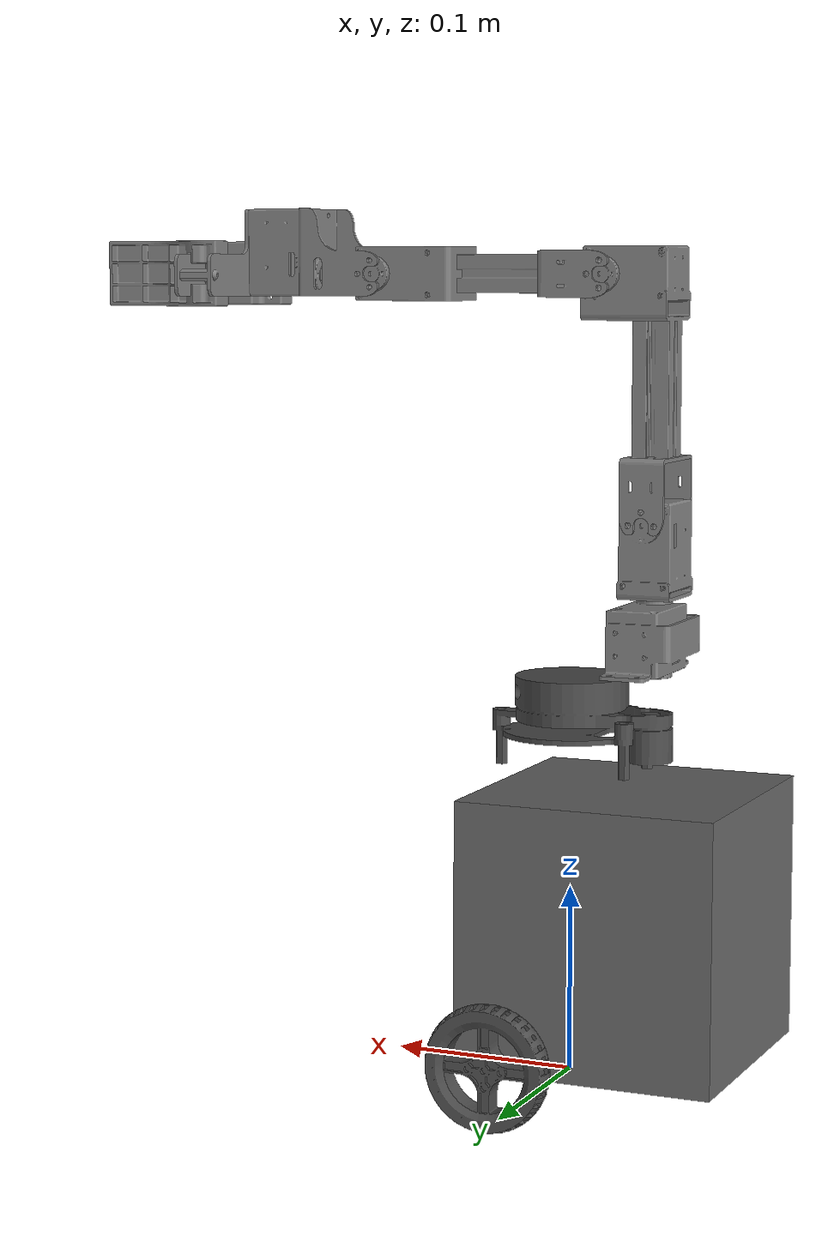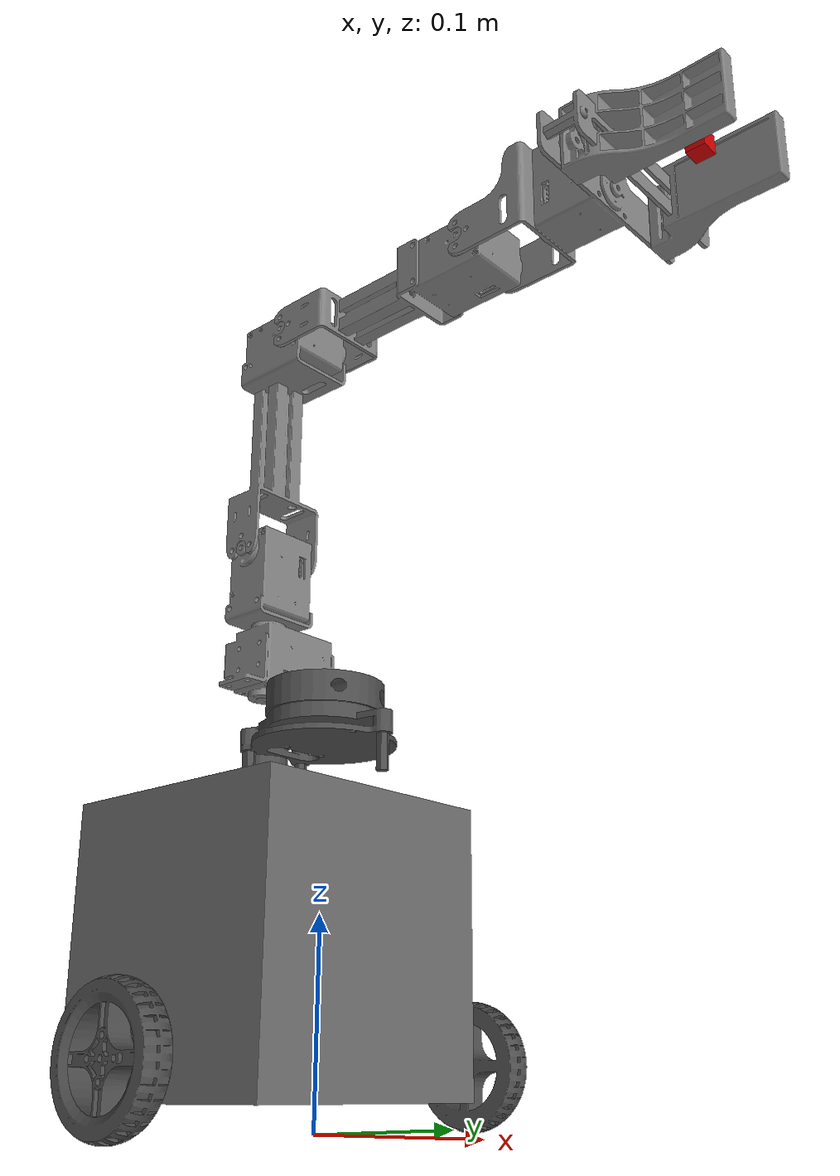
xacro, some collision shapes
<?xml version="1.0"?>
<robot name="transbot_miniarm" xmlns:xacro="http://ros.org/wiki/xacro">

  <!-- Include Transbot URDF -->
  <xacro:include filename="$(find transbot_description)/urdf/transbot_normal.urdf.xacro"/>

  <!-- Include MINIARM URDF -->
  <xacro:include filename="$(find transbot_description)/urdf/miniarm.urdf.xacro"/>

  <!-- Base fixed joint -->
  <joint name="base_fixed" type="fixed">
    <origin xyz="-0.04575 0.0 0.206" rpy="0 0 0"/>
    <parent link="base_link"/>
    <child link="link1"/>
  </joint>

</robot>

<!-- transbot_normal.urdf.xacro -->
<robot name="transbot_normal" xmlns:xacro="http://ros.org/wiki/xacro">
  <xacro:include filename="$(find transbot_description)/urdf/common_properties.xacro"/>
  <xacro:include filename="$(find transbot_description)/urdf/transbot_normal.gazebo.xacro"/>

  <link name="base_footprint"/>

  <joint name="base_joint" type="fixed">
    <parent link="base_footprint"/>
    <child link="base_link"/>
    <origin xyz="0.0 0.0 0.015" rpy="0 0 0"/>
  </joint>

  <link name="base_link">
    <visual>
      <origin xyz="-0.04575 0 0.0" rpy="0 0 0"/>
      <geometry>
        <mesh filename="package://transbot_description/meshes/bases/normal_base.stl" scale="0.001 0.001 0.001"/>
      </geometry>
      <material name="light_black"/>
    </visual>

    <collision>
      <origin xyz="-0.032 0 0.070" rpy="0 0 0"/>
      <geometry>
        <box size="0.140 0.140 0.143"/>
      </geometry>
    </collision>

    <inertial>
      <origin xyz="0 0 0" rpy="0 0 0"/>
      <mass value="8.2573504e-01"/>
      <inertia ixx="2.2124416e-03" ixy="-1.2294101e-05" ixz="3.4938785e-05"
               iyy="2.1193702e-03" iyz="-5.0120904e-06"
               izz="2.0064271e-03" />
    </inertial>
  </link>

  <joint name="wheel_left_rear_joint" type="continuous">
    <parent link="base_link"/>
    <child link="wheel_left_link"/>
    <origin xyz="0.0 0.1155 0.01625" rpy="-1.57 0 0"/>
    <axis xyz="0 0 1"/>
  </joint>

  <link name="wheel_left_link">
    <visual>
      <origin xyz="0 0 0" rpy="1.57 0 0"/>
      <geometry>
        <mesh filename="package://transbot_description/meshes/wheels/left_normal.stl" scale="0.001 0.001 0.001"/>
      </geometry>
      <material name="dark"/>
    </visual>

    <collision>
      <origin xyz="0 0 0" rpy="0 0 0"/>
      <geometry>
        <cylinder length="0.018" radius="0.033"/>
      </geometry>
    </collision>

    <inertial>
      <origin xyz="0 0 0" />
      <mass value="2.8498940e-02" />
      <inertia ixx="1.1175580e-05" ixy="-4.2369783e-11" ixz="-5.9381719e-09"
               iyy="1.1192413e-05" iyz="-1.4400107e-11"
               izz="2.0712558e-05" />
      </inertial>
  </link>

  <joint name="wheel_right_rear_joint" type="continuous">
    <parent link="base_link"/>
    <child link="wheel_right_link"/>
    <origin xyz="0.0 -0.1155 0.01625" rpy="-1.57 0 0"/>
    <axis xyz="0 0 1"/>
  </joint>

  <link name="wheel_right_link">
    <visual>
      <origin xyz="0 0 0" rpy="1.57 0 0"/>
      <geometry>
        <mesh filename="package://transbot_description/meshes/wheels/right_normal.stl" scale="0.001 0.001 0.001"/>
      </geometry>
      <material name="dark"/>
    </visual>

    <collision>
      <origin xyz="0 0 0" rpy="0 0 0"/>
      <geometry>
        <cylinder length="0.018" radius="0.033"/>
      </geometry>
    </collision>

    <inertial>
      <origin xyz="0 0 0" />
      <mass value="2.8498940e-02" />
      <inertia ixx="1.1175580e-05" ixy="-4.2369783e-11" ixz="-5.9381719e-09"
               iyy="1.1192413e-05" iyz="-1.4400107e-11"
               izz="2.0712558e-05" />
      </inertial>
  </link>

<joint name="wheel_left_front_joint" type="continuous">
    <parent link="base_link"/>
    <child link="wheel_left_front_link"/>
    <origin xyz="-0.0915 0.1155 0.01625" rpy="-1.57 0 0"/>
    <axis xyz="0 0 1"/>
  </joint>

  <link name="wheel_left_front_link">
  </link>

  <joint name="wheel_right_front_joint" type="continuous">
    <parent link="base_link"/>
    <child link="wheel_right_front_link"/>
    <origin xyz="-0.0915 -0.1155 0.01625" rpy="-1.57 0 0"/>
    <axis xyz="0 0 1"/>
  </joint>

  <link name="wheel_right_front_link">
  </link>

  <joint name="caster_back_joint" type="fixed">
    <parent link="base_link"/>
    <child link="caster_back_link"/>
    <origin xyz="-0.11775 0 -0.004" rpy="-1.57 0 0"/>
  </joint>

  <link name="caster_back_link">
    <collision>
      <origin xyz="0 0.001 0" rpy="0 0 0"/>
      <geometry>
        <box size="0.030 0.009 0.020"/>
      </geometry>
    </collision>

    <inertial>
      <origin xyz="0 0 0" />
      <mass value="0.05" />
      <inertia ixx="0.001" ixy="0.0" ixz="0.0"
               iyy="0.001" iyz="0.0"
               izz="0.001" />
    </inertial>
  </link>

  <joint name="imu_joint" type="fixed">
    <parent link="base_link"/>
    <child link="imu_link"/>
    <origin xyz="-0.07275 0 0.078" rpy="0 0 0"/>
  </joint>

  <link name="imu_link"/>

  <joint name="scan_joint" type="fixed">
    <parent link="base_link"/>
    <child link="base_scan"/>
    <origin xyz="0.0 0 0.192" rpy="0 0 0"/>
  </joint>

  <link name="base_scan">
    <visual>
      <origin xyz="0 0 0.0" rpy="0 0 0"/>
      <geometry>
        <mesh filename="package://transbot_description/meshes/sensors/yd-x2l.stl" scale="0.001 0.001 0.001"/>
      </geometry>
      <material name="dark"/>
    </visual>

    <collision>
      <origin xyz="0.015 0 -0.0065" rpy="0 0 0"/>
      <geometry>
        <cylinder length="0.0315" radius="0.055"/>
      </geometry>
    </collision>

    <inertial>
      <mass value="0.114" />
      <origin xyz="0 0 0" />
      <inertia ixx="0.001" ixy="0.0" ixz="0.0"
               iyy="0.001" iyz="0.0"
               izz="0.001" />
    </inertial>
  </link>

 <joint name="camera_joint" type="fixed">
    <origin xyz="0.0332 0.0 0.0934" rpy="0 0 0"/>
    <parent link="base_link"/>
    <child link="camera_link"/>
  </joint>

  <link name="camera_link">
    <collision>
      <origin xyz="0.0 0.0 0.0" rpy="0 0 0"/>
      <geometry>
        <box size="0.015 0.030 0.027"/>
      </geometry>
    </collision>
  </link>

  <joint name="camera_rgb_joint" type="fixed">
    <origin xyz="0.0 0.0 0.0" rpy="0 0 0"/>
    <parent link="camera_link"/>
    <child link="camera_rgb_frame"/>
  </joint>
  <link name="camera_rgb_frame"/>

  <joint name="camera_rgb_optical_joint" type="fixed">
    <origin xyz="0 0 0" rpy="-1.57 0 -1.57"/>
    <parent link="camera_rgb_frame"/>
    <child link="camera_rgb_optical_frame"/>
  </joint>
  <link name="camera_rgb_optical_frame"/>

</robot>

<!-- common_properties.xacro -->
<robot name="xacro_properties" xmlns:xacro="http://ros.org/wiki/xacro">

  <!-- Init colour -->
  <material name="black">
      <color rgba="0.0 0.0 0.0 1.0"/>
  </material>

  <material name="dark">
    <color rgba="0.3 0.3 0.3 1.0"/>
  </material>
  <material name="light_black">
    <color rgba="0.4 0.4 0.4 1.0"/>
  </material>

  <material name="blue">
    <color rgba="0.0 0.0 0.8 1.0"/>
  </material>

  <material name="green">
    <color rgba="0.0 0.8 0.0 1.0"/>
  </material>

  <material name="grey">
    <color rgba="0.5 0.5 0.5 1.0"/>
  </material>

  <material name="orange">
    <color rgba="${255/255} ${108/255} ${10/255} 1.0"/>
  </material>

  <material name="brown">
    <color rgba="${222/255} ${207/255} ${195/255} 1.0"/>
  </material>

  <material name="red">
    <color rgba="0.8 0.0 0.0 1.0"/>
  </material>

  <material name="white">
    <color rgba="1.0 1.0 1.0 1.0"/>
  </material>
</robot>

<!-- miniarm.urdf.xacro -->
<robot xmlns:xacro="http://ros.org/wiki/xacro">

  <!-- Include MiniArm Gazebo Parameter -->
  <xacro:include filename="$(find transbot_description)/urdf/miniarm.gazebo.xacro"/>

  <!-- Include MiniArm Transmission -->
  <xacro:include filename="$(find transbot_description)/urdf/miniarm.transmission.xacro"/>

  <!-- Link 1 -->
  <link name="link1">
    <visual>
      <origin xyz="0 0 0" rpy="0 0 0"/>
      <geometry>
        <mesh filename="package://transbot_description/meshes/arm/chain_link1.stl" scale="0.001 0.001 0.001"/>
      </geometry>
      <material name="grey"/>
    </visual>

    <collision>
      <origin xyz="0 0 0" rpy="0 0 0"/>
      <geometry>
        <mesh filename="package://transbot_description/meshes/arm/chain_link1.stl" scale="0.001 0.001 0.001"/>
      </geometry>
    </collision>

     <inertial>
      <origin xyz="3.0876154e-04 0.0000000e+00 -1.2176461e-04" />
      <mass value="7.9119962e-02" />
      <inertia ixx="1.2505234e-05" ixy="0.0" ixz="-1.7855208e-07"
               iyy="2.1898364e-05" iyz="0.0"
               izz="1.9267361e-05" />
    </inertial>
  </link>

  <!-- Joint 1 -->
  <joint name="joint1" type="revolute">
    <parent link="link1"/>
    <child link="link2"/>
    <origin xyz="0.0 0.0 0.017" rpy="0 0 0"/>
    <axis xyz="0 0 1"/>
    <limit velocity="4.8" effort="1" lower="${-pi*0.9}" upper="${pi*0.9}" />
  </joint>

  <!--  Link 2 -->
  <link name="link2">
    <visual>
      <origin xyz="0 0 0.0207" rpy="0 0 0"/>
      <geometry>
        <mesh filename="package://transbot_description/meshes/arm/chain_link2.stl" scale="0.001 0.001 0.001"/>
      </geometry>
      <material name="grey"/>
    </visual>

    <collision>
      <origin xyz="0 0 0.0207" rpy="0 0 0"/>
      <geometry>
        <mesh filename="package://transbot_description/meshes/arm/chain_link2.stl" scale="0.001 0.001 0.001"/>
      </geometry>
    </collision>

     <inertial>
      <origin xyz="-3.0184870e-04 5.4043684e-04 ${0.018 + 2.9433464e-02}" />
      <mass value="9.8406837e-02" />
      <inertia ixx="3.4543422e-05" ixy="-1.6031095e-08" ixz="-3.8375155e-07"
               iyy="3.2689329e-05" iyz="2.8511935e-08"
               izz="1.8850320e-05" />
    </inertial>
  </link>

  <!--  Joint 2 -->
  <joint name="joint2" type="revolute">
    <parent link="link2"/>
    <child link="link3"/>
    <origin xyz="0.0 0.0 0.060" rpy="0 0 0"/>
    <axis xyz="0 1 0"/>
    <limit velocity="4.8" effort="1" lower="${-pi*0.57}" upper="${pi*0.5}" />
  </joint>

  <!--  Link 3 -->
  <link name="link3">
    <visual>
      <origin xyz="0 0 0" rpy="0 0 0"/>
      <geometry>
        <mesh filename="package://transbot_description/meshes/arm/chain_link3.stl" scale="0.001 0.001 0.001"/>
      </geometry>
      <material name="grey"/>
    </visual>

    <collision>
      <origin xyz="0 0 0" rpy="0 0 0"/>
      <geometry>
        <mesh filename="package://transbot_description/meshes/arm/chain_link3.stl" scale="0.001 0.001 0.001"/>
      </geometry>
    </collision>

     <inertial>
      <origin xyz="1.0308393e-02 3.7743363e-04 1.0170197e-01" />
      <mass value="1.3850917e-01" />
      <inertia ixx="3.3055381e-04" ixy="-9.7940978e-08" ixz="-3.8505711e-05"
               iyy="3.4290447e-04" iyz="-1.5717516e-06"
               izz="6.0346498e-05" />
    </inertial>
  </link>

  <!--  Joint 3 -->
  <joint name="joint3" type="revolute">
    <parent link="link3"/>
    <child link="link4"/>
    <origin xyz="0.024 0 0.128" rpy="0 0 0"/>
    <axis xyz="0 1 0"/>
    <limit velocity="4.8" effort="1" lower="${-pi*0.3}" upper="${pi*0.44}" />
  </joint>

  <!--  Link 4 -->
  <link name="link4">
    <visual>
      <origin xyz="0 0 0" rpy="0 0 0"/>
      <geometry>
        <mesh filename="package://transbot_description/meshes/arm/chain_link4.stl" scale="0.001 0.001 0.001"/>
      </geometry>
      <material name="grey"/>
    </visual>

    <collision>
      <origin xyz="0 0 0" rpy="0 0 0"/>
      <geometry>
        <mesh filename="package://transbot_description/meshes/arm/chain_link4.stl" scale="0.001 0.001 0.001"/>
      </geometry>
    </collision>

     <inertial>
      <origin xyz="9.0909590e-02 3.8929816e-04 2.2413279e-04" />
      <mass value="1.3274562e-01" />
      <inertia ixx="3.0654178e-05" ixy="-1.2764155e-06" ixz="-2.6874417e-07"
               iyy="2.4230292e-04" iyz="1.1559550e-08"
               izz="2.5155057e-04" />
    </inertial>
  </link>

  <!--  Joint 4 -->
  <joint name="joint4" type="revolute">
    <parent link="link4"/>
    <child link="link5"/>
    <origin xyz="0.129 0.0 0.0" rpy="0 0 0"/>
    <axis xyz="0 1 0"/>
    <limit velocity="4.8" effort="1" lower="${-pi*0.57}" upper="${pi*0.65}" />
  </joint>

  <!--  Link 5 -->
  <link name="link5">
    <visual>
      <origin xyz="0 0 0" rpy="0 0 0"/>
      <geometry>
        <mesh filename="package://transbot_description/meshes/arm/chain_link5.stl" scale="0.001 0.001 0.001"/>
      </geometry>
      <material name="grey"/>
    </visual>

    <collision>
      <origin xyz="0 0 0" rpy="0 0 0"/>
      <geometry>
        <mesh filename="package://transbot_description/meshes/arm/chain_link5.stl" scale="0.001 0.001 0.001"/>
      </geometry>
    </collision>

    <inertial>
      <origin xyz="4.4206755e-02 3.6839985e-07 8.9142216e-03" />
      <mass value="1.0e-03" />
      <inertia ixx="1.0e-03" ixy="0.0" ixz="0.0"
               iyy="1.0e-03" iyz="0.0"
               izz="1.0e-03" />
    </inertial>
  </link>

  <!--  Gripper link -->
  <link name="gripper_link">
    <visual>
      <origin xyz="0.0 0.0 0" rpy="0 0 0"/>
      <geometry>
        <mesh filename="package://transbot_description/meshes/arm/chain_link_grip_l.stl" scale="0.001 0.001 0.001"/>
      </geometry>
      <material name="grey"/>
    </visual>

    <collision>
      <origin xyz="0.0 0.0 0" rpy="0 0 0"/>
      <geometry>
        <mesh filename="package://transbot_description/meshes/arm/chain_link_grip_l.stl" scale="0.001 0.001 0.001"/>
      </geometry>
    </collision>

    <inertial>
      <origin xyz="0 0 0" />
      <mass value="1.0e-03" />
      <inertia ixx="1.0e-03" ixy="0.0" ixz="0.0"
               iyy="1.0e-03" iyz="0.0"
               izz="1.0e-03" />
    </inertial>
  </link>

  <!--  Gripper joint -->
  <joint name="gripper" type="prismatic">
    <parent link="link5"/>
    <child link="gripper_link"/>
    <origin xyz="0.098 0.021 0.0" rpy="0 0 0"/>
    <axis xyz="0 1 0"/>
    <limit velocity="4.8" effort="1" lower="-0.010" upper="0.019" />
  </joint>

  <!--  Gripper link sub -->
  <link name="gripper_link_sub">
    <visual>
      <origin xyz="0.0 -0.0 0" rpy="0 0 0"/>
      <geometry>
        <mesh filename="package://transbot_description/meshes/arm/chain_link_grip_r.stl" scale="0.001 0.001 0.001"/>
      </geometry>
      <material name="grey"/>
    </visual>

    <collision>
      <origin xyz="0.0 -0.0 0" rpy="0 0 0"/>
      <geometry>
        <mesh filename="package://transbot_description/meshes/arm/chain_link_grip_r.stl" scale="0.001 0.001 0.001"/>
      </geometry>
    </collision>

    <inertial>
      <origin xyz="0 0 0" />
      <mass value="1.0e-03" />
      <inertia ixx="1.0e-03" ixy="0.0" ixz="0.0"
               iyy="1.0e-03" iyz="0.0"
               izz="1.0e-03" />
    </inertial>
  </link>

  <!--  Gripper joint sub -->
  <joint name="gripper_sub" type="prismatic">
    <parent link="link5"/>
    <child link="gripper_link_sub"/>
    <origin xyz="0.098 -0.021 0" rpy="0 0 0"/>
    <axis xyz="0 -1 0"/>
    <limit velocity="4.8" effort="1" lower="-0.010" upper="0.019" />
    <mimic joint="gripper" multiplier="1"/>
  </joint>

  <!-- end effector joint -->
  <joint name="end_effector_joint" type="fixed">
    <origin xyz="0.126 0.0 0.0" rpy="0 0 0"/>
    <parent link="link5"/>
    <child link="end_effector_link"/>
  </joint>

  <!-- end effector link -->
  <link name="end_effector_link">
    <visual>
      <origin xyz="0 0 0" rpy="0 0 0"/>
      <geometry>
        <box size="0.01 0.01 0.01" />
      </geometry>
      <material name="red"/>
     </visual>

    <inertial>
      <origin xyz="0 0 0" />
      <mass value="1.0e-03" />
      <inertia ixx="1.0e-03" ixy="0.0" ixz="0.0"
               iyy="1.0e-03" iyz="0.0"
               izz="1.0e-03" />
    </inertial>
  </link>

</robot>
